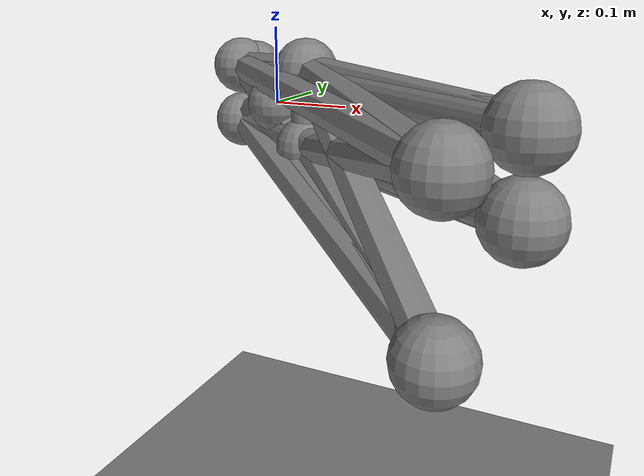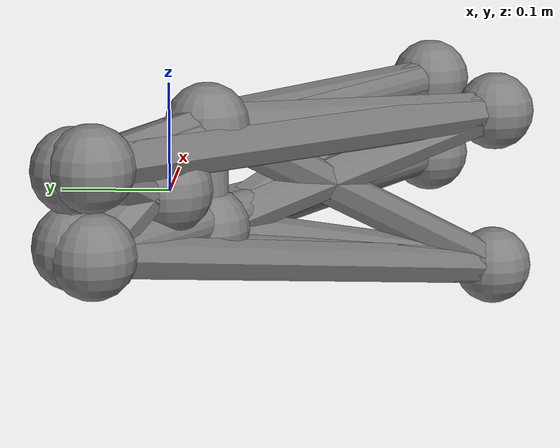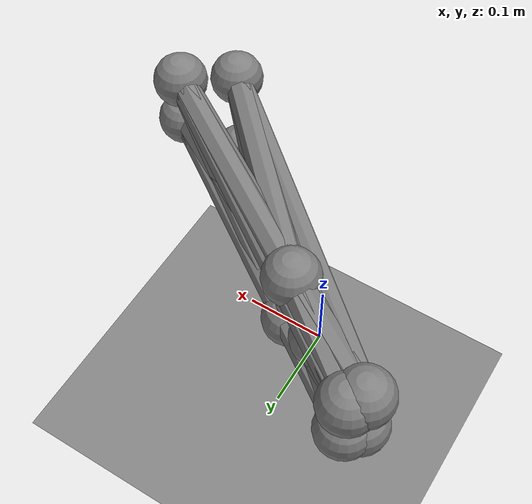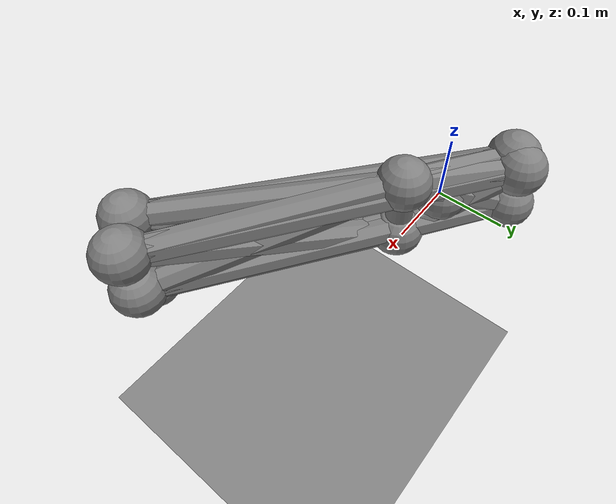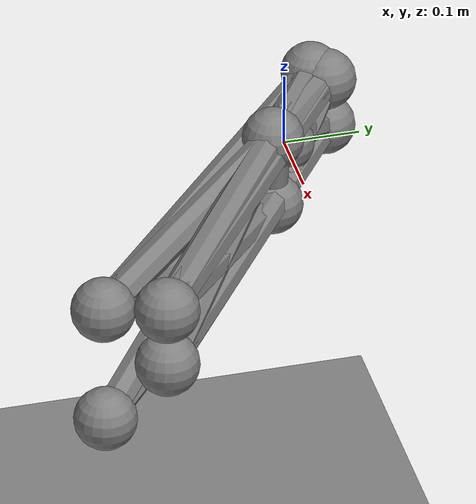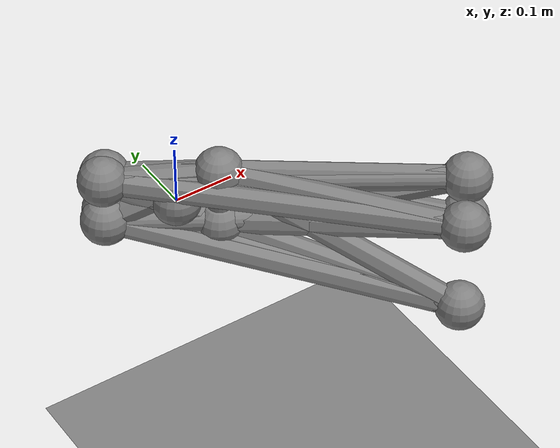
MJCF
<mujoco model="dbar">

    <!-- C:\Users\Vishala\Documents\MS_THO\PhD_Fall_2019\Study\RL\Project\commona -->

    <option timestep="0.002" iterations="50" solver="PGS" tolerance="1e-10" gravity = "0 0 -1" viscosity="0"/>
    <size njmax="100" nconmax="20" nstack="400"/>

    <default>
        <motor ctrllimited="false" ctrlrange="-1 1"/>
		<tendon stiffness="0.9" damping=".001"/>
		<geom size="0.02" mass="1"/>
		<site size="0.04"/>
    </default>

    <worldbody>
        <geom name="floor" pos="0 0 -0.5" size="10 10 0.125" type="plane" condim="3"/>
        <light directional="true" diffuse=".8 .8 .8" specular=".2 .2 .2" pos="0 0 5" dir="0 0 -1"/>
        <site name="s0" pos="0 0 0"/>
	<body>
      <geom name="bar1" type="capsule" fromto="0.3237 -0.309 -0.150 -0.0809 0.0773 -0.0350"/>
	  <site name="b2" pos="0.3237 -0.309 -0.150"/>
      <site name="b4" pos="-0.0809 0.0773 -0.0350"/>

	</body>
	<body>
	  <geom name="bar2" type="capsule" fromto="0.3237 -0.309 0.015  -0.0809 0.0773 0.0350"/>
	  <site name="b8" pos="0.3237 -0.309 0.015"/>
	  <site name="b10" pos="-0.0809 0.0773 0.0350"/>
	</body>
	<body>
	 <geom name="bar3" type="capsule" fromto="-0.094 0.0605 -0.04  0.376 -0.242 -0.04"/>
	 <site name="b3" pos="-0.094 0.0605 -0.04"/>
	 <site name="b1" pos="0.376 -0.242 -0.04"/>
    </body>
	<body>
     <geom name="bar4" type="capsule" fromto="-0.0942 0.0605 0.04  0.3770 -0.242 0.04" />
	 <site name="b9" pos="-0.0942 0.0605 0.04"/>
	 <site name="b7" pos="0.3770 -0.242 0.04"/>
    </body>
	<body>
    <geom name="bar5" type="capsule" fromto="0.060 -0.03 -0.05  0.06 -0.03 0.05"/>
	 <site name="b5" pos="0.060 -0.03 -0.05"/>
	 <site name="b6" pos="0.06 -0.03 0.05"/>
    </body>
    </worldbody>
  <tendon>
        <spatial name="S1" width="0.02">
            <site site="b2"/>
            <site site="b3"/>
        </spatial>
  	<spatial name="S2" width="0.02">
            <site site="b3"/>
            <site site="b4"/>
        </spatial>
	<spatial name="S3" width="0.02">
            <site site="b4"/>
            <site site="b1"/>
        </spatial>
	<spatial name="S4" width="0.02">
            <site site="b1"/>
            <site site="b5"/>
        </spatial>
	<spatial name="S5" width="0.02">
            <site site="b2"/>
            <site site="b5"/>
        </spatial>
	<spatial name="S6" width="0.02">
            <site site="b3"/>
            <site site="b5"/>
        </spatial>
	<spatial name="S7" width="0.02">
            <site site="b4"/>
            <site site="b5"/>
        </spatial>
	<spatial name="S8" width="0.02">
            <site site="b1"/>
            <site site="b6"/>
        </spatial>
	<spatial name="S9" width="0.02">
            <site site="b2"/>
            <site site="b6"/>
        </spatial>
	<spatial name="S10" width="0.02">
            <site site="b3"/>
            <site site="b6"/>
        </spatial>
	<spatial name="S11" width="0.02">
            <site site="b4"/>
            <site site="b6"/>
        </spatial>
	<spatial name="S12" width="0.02">
            <site site="b8"/>
            <site site="b9"/>
        </spatial>
	<spatial name="S13" width="0.02">
            <site site="b9"/>
            <site site="b10"/>
        </spatial>
	<spatial name="S14" width="0.02">
            <site site="b10"/>
            <site site="b7"/>
        </spatial>
	<spatial name="S15" width="0.02">
            <site site="b5"/>
            <site site="b7"/>
        </spatial>
	<spatial name="S16" width="0.02">
            <site site="b5"/>
            <site site="b8"/>
        </spatial>
	<spatial name="S17" width="0.02">
            <site site="b5"/>
            <site site="b9"/>
        </spatial>
      <spatial name="S18" width="0.02">
            <site site="b5"/>
            <site site="b10"/>
	</spatial>
	<spatial name="S19" width="0.02">
            <site site="b6"/>
            <site site="b7"/>
        </spatial>
	<spatial name="S20" width="0.02">
            <site site="b6"/>
            <site site="b8"/>
        </spatial>
	<spatial name="S21" width="0.02">
            <site site="b6"/>
            <site site="b9"/>
        </spatial>
	<spatial name="S22" width="0.02">
            <site site="b6"/>
            <site site="b10"/>
        </spatial>
	<spatial name="S23" width="0.02">
            <site site="b4"/>
            <site site="b10"/>
        </spatial>
    </tendon>

   <actuator>
        <motor tendon="S1" gear="1"/>
        <motor tendon="S2" gear="1"/>
		<motor tendon="S3" gear="1"/>
        <motor tendon="S4" gear="1"/>
		<motor tendon="S5" gear="1"/>
        <motor tendon="S6" gear="1"/>
		<motor tendon="S7" gear="1"/>
        <motor tendon="S8" gear="1"/>
		<motor tendon="S9" gear="1"/>
        <motor tendon="S10" gear="1"/>
		<motor tendon="S11" gear="1"/>
        <motor tendon="S12" gear="1"/>
	    <motor tendon="S13" gear="1"/>
        <motor tendon="S14" gear="1"/>
		<motor tendon="S15" gear="1"/>
        <motor tendon="S16" gear="1"/>
		<motor tendon="S17" gear="1"/>
		<motor tendon="S18" gear="1"/>
        <motor tendon="S19" gear="1"/>
		<motor tendon="S20" gear="1"/>
        <motor tendon="S21" gear="1"/>
	    <motor tendon="S22" gear="1"/>
        <motor tendon="S23" gear="1"/>
   </actuator>

	<sensor>
		<framelinvel objtype="site" objname="b1"/>
		<framelinvel objtype="site" objname="b2"/>
		<framelinvel objtype="site" objname="b3"/>
		<framelinvel objtype="site" objname="b4"/>
		<framelinvel objtype="site" objname="b5"/>
		<framelinvel objtype="site" objname="b6"/>
        <framelinvel objtype="site" objname="b7"/>
		<framelinvel objtype="site" objname="b8"/>
		<framelinvel objtype="site" objname="b9"/>
		<framelinvel objtype="site" objname="b10"/>
	</sensor>
</mujoco>
